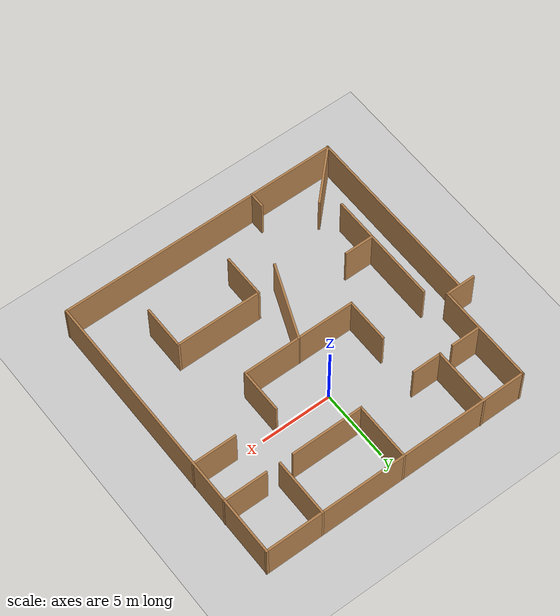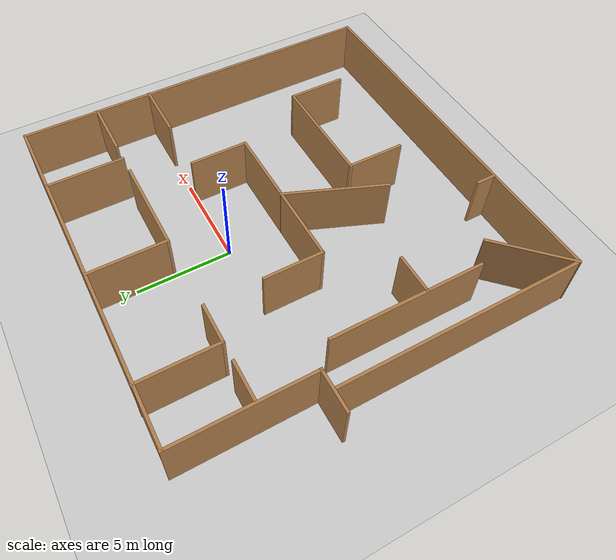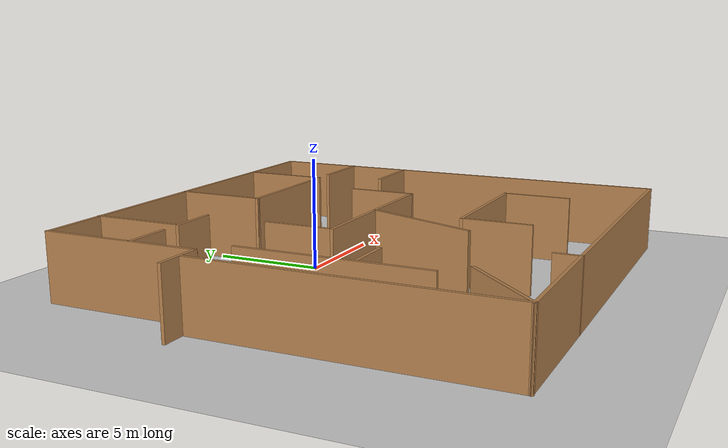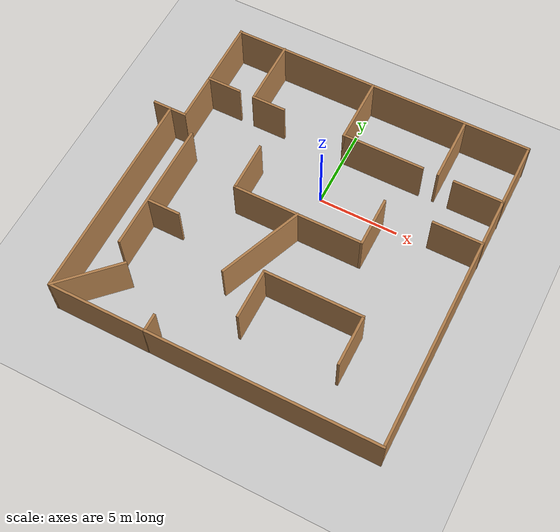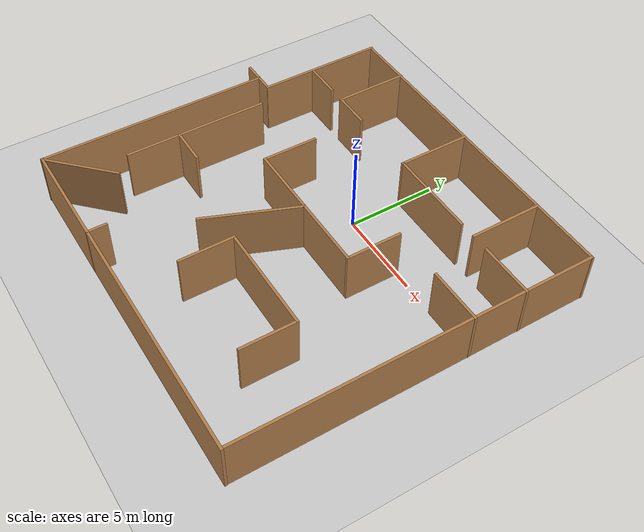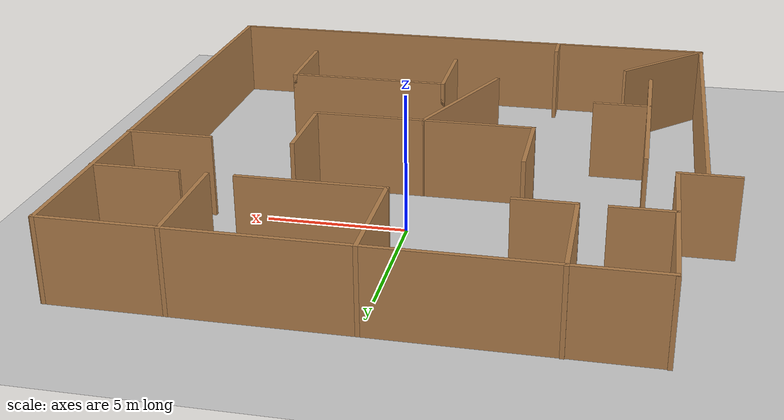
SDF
<sdf version="1.7">
 <world name="default">
  <model name="ground_plane">
   <static>1</static>
   <link name="link">
    <collision name="collision">
     <geometry><plane><normal>0 0 1</normal><size>100 100</size></plane></geometry>
     <surface>
      <contact><collide_bitmask>65535</collide_bitmask></contact>
      <friction><ode><mu>100</mu><mu2>50</mu2></ode></friction>
     </surface>
    </collision>
    <visual name="visual">
     <cast_shadows>0</cast_shadows>
     <geometry><plane><normal>0 0 1</normal><size>100 100</size></plane></geometry>
     <material>
      <script><uri>file://media/materials/scripts/gazebo.material</uri><name>Gazebo/Grey</name></script>
     </material>
    </visual>
   </link>
  </model>
  <model name="exploration_worlds1">
   <link name="Wall_1">
    <pose>-9.98447 -3.49997 0 0 -0 1.5708</pose>
    <visual name="Wall_1_Visual">
     <pose>0 0 1.5 0 -0 0</pose>
     <geometry><box><size>13.15 0.15 3</size></box></geometry>
     <material>
      <script><uri>file://media/materials/scripts/gazebo.material</uri><name>Gazebo/Wood</name></script>
      <ambient>1 1 1 1</ambient>
      <shader type="pixel"/>
     </material>
     <meta><layer>0</layer></meta>
    </visual>
    <collision name="Wall_1_Collision">
     <pose>0 0 1.5 0 -0 0</pose>
     <geometry><box><size>13.15 0.15 3</size></box></geometry>
     <surface>
      <friction>
       <ode><mu>1</mu><mu2>1</mu2><fdir1>0 0 0</fdir1><slip1>0</slip1><slip2>0</slip2></ode>
       <torsional>
        <coefficient>1</coefficient>
        <patch_radius>0</patch_radius>
        <surface_radius>0</surface_radius>
        <use_patch_radius>1</use_patch_radius>
        <ode><slip>0</slip></ode>
       </torsional>
      </friction>
      <bounce><restitution_coefficient>0</restitution_coefficient><threshold>1e+06</threshold></bounce>
      <contact>
       <collide_without_contact>0</collide_without_contact>
       <collide_without_contact_bitmask>1</collide_without_contact_bitmask>
       <collide_bitmask>1</collide_bitmask>
       <ode>
        <soft_cfm>0</soft_cfm>
        <soft_erp>0.2</soft_erp>
        <kp>1e+13</kp>
        <kd>1</kd>
        <max_vel>0.01</max_vel>
        <min_depth>0</min_depth>
       </ode>
       <bullet>
        <split_impulse>1</split_impulse>
        <split_impulse_penetration_threshold>-0.01</split_impulse_penetration_threshold>
        <soft_cfm>0</soft_cfm>
        <soft_erp>0.2</soft_erp>
        <kp>1e+13</kp>
        <kd>1</kd>
       </bullet>
      </contact>
     </surface>
    </collision>
   </link>
   <link name="Wall_10">
    <pose>6.00253 8.01353 0 0 -0 1.5708</pose>
    <visual name="Wall_10_Visual">
     <pose>0 0 1.5 0 -0 0</pose>
     <geometry><box><size>4.123 0.15 3</size></box></geometry>
     <material>
      <script><uri>file://media/materials/scripts/gazebo.material</uri><name>Gazebo/Wood</name></script>
      <ambient>1 1 1 1</ambient>
      <shader type="pixel"/>
     </material>
     <meta><layer>0</layer></meta>
    </visual>
    <collision name="Wall_10_Collision">
     <pose>0 0 1.5 0 -0 0</pose>
     <geometry><box><size>4.123 0.15 3</size></box></geometry>
     <surface>
      <friction>
       <ode><mu>1</mu><mu2>1</mu2><fdir1>0 0 0</fdir1><slip1>0</slip1><slip2>0</slip2></ode>
       <torsional>
        <coefficient>1</coefficient>
        <patch_radius>0</patch_radius>
        <surface_radius>0</surface_radius>
        <use_patch_radius>1</use_patch_radius>
        <ode><slip>0</slip></ode>
       </torsional>
      </friction>
      <bounce><restitution_coefficient>0</restitution_coefficient><threshold>1e+06</threshold></bounce>
      <contact>
       <collide_without_contact>0</collide_without_contact>
       <collide_without_contact_bitmask>1</collide_without_contact_bitmask>
       <collide_bitmask>1</collide_bitmask>
       <ode>
        <soft_cfm>0</soft_cfm>
        <soft_erp>0.2</soft_erp>
        <kp>1e+13</kp>
        <kd>1</kd>
        <max_vel>0.01</max_vel>
        <min_depth>0</min_depth>
       </ode>
       <bullet>
        <split_impulse>1</split_impulse>
        <split_impulse_penetration_threshold>-0.01</split_impulse_penetration_threshold>
        <soft_cfm>0</soft_cfm>
        <soft_erp>0.2</soft_erp>
        <kp>1e+13</kp>
        <kd>1</kd>
       </bullet>
      </contact>
     </surface>
    </collision>
   </link>
   <link name="Wall_12">
    <pose>8.51553 6.00003 0 0 -0 0</pose>
    <visual name="Wall_12_Visual">
     <pose>0 0 1.5 0 -0 0</pose>
     <geometry><box><size>3.15 0.15 3</size></box></geometry>
     <material>
      <script><uri>file://media/materials/scripts/gazebo.material</uri><name>Gazebo/Wood</name></script>
      <ambient>1 1 1 1</ambient>
      <shader type="pixel"/>
     </material>
     <meta><layer>0</layer></meta>
    </visual>
    <collision name="Wall_12_Collision">
     <pose>0 0 1.5 0 -0 0</pose>
     <geometry><box><size>3.15 0.15 3</size></box></geometry>
     <surface>
      <friction>
       <ode><mu>1</mu><mu2>1</mu2><fdir1>0 0 0</fdir1><slip1>0</slip1><slip2>0</slip2></ode>
       <torsional>
        <coefficient>1</coefficient>
        <patch_radius>0</patch_radius>
        <surface_radius>0</surface_radius>
        <use_patch_radius>1</use_patch_radius>
        <ode><slip>0</slip></ode>
       </torsional>
      </friction>
      <bounce><restitution_coefficient>0</restitution_coefficient><threshold>1e+06</threshold></bounce>
      <contact>
       <collide_without_contact>0</collide_without_contact>
       <collide_without_contact_bitmask>1</collide_without_contact_bitmask>
       <collide_bitmask>1</collide_bitmask>
       <ode>
        <soft_cfm>0</soft_cfm>
        <soft_erp>0.2</soft_erp>
        <kp>1e+13</kp>
        <kd>1</kd>
        <max_vel>0.01</max_vel>
        <min_depth>0</min_depth>
       </ode>
       <bullet>
        <split_impulse>1</split_impulse>
        <split_impulse_penetration_threshold>-0.01</split_impulse_penetration_threshold>
        <soft_cfm>0</soft_cfm>
        <soft_erp>0.2</soft_erp>
        <kp>1e+13</kp>
        <kd>1</kd>
       </bullet>
      </contact>
     </surface>
    </collision>
   </link>
   <link name="Wall_14">
    <pose>2.51553 6.00003 0 0 -0 0</pose>
    <visual name="Wall_14_Visual">
     <pose>0 0 1.5 0 -0 0</pose>
     <geometry><box><size>5.15 0.15 3</size></box></geometry>
     <material>
      <script><uri>file://media/materials/scripts/gazebo.material</uri><name>Gazebo/Wood</name></script>
      <ambient>1 1 1 1</ambient>
      <shader type="pixel"/>
     </material>
     <meta><layer>0</layer></meta>
    </visual>
    <collision name="Wall_14_Collision">
     <pose>0 0 1.5 0 -0 0</pose>
     <geometry><box><size>5.15 0.15 3</size></box></geometry>
     <surface>
      <friction>
       <ode><mu>1</mu><mu2>1</mu2><fdir1>0 0 0</fdir1><slip1>0</slip1><slip2>0</slip2></ode>
       <torsional>
        <coefficient>1</coefficient>
        <patch_radius>0</patch_radius>
        <surface_radius>0</surface_radius>
        <use_patch_radius>1</use_patch_radius>
        <ode><slip>0</slip></ode>
       </torsional>
      </friction>
      <bounce><restitution_coefficient>0</restitution_coefficient><threshold>1e+06</threshold></bounce>
      <contact>
       <collide_without_contact>0</collide_without_contact>
       <collide_without_contact_bitmask>1</collide_without_contact_bitmask>
       <collide_bitmask>1</collide_bitmask>
       <ode>
        <soft_cfm>0</soft_cfm>
        <soft_erp>0.2</soft_erp>
        <kp>1e+13</kp>
        <kd>1</kd>
        <max_vel>0.01</max_vel>
        <min_depth>0</min_depth>
       </ode>
       <bullet>
        <split_impulse>1</split_impulse>
        <split_impulse_penetration_threshold>-0.01</split_impulse_penetration_threshold>
        <soft_cfm>0</soft_cfm>
        <soft_erp>0.2</soft_erp>
        <kp>1e+13</kp>
        <kd>1</kd>
       </bullet>
      </contact>
     </surface>
    </collision>
   </link>
   <link name="Wall_16">
    <pose>0.015533 8.00003 0 0 -0 1.5708</pose>
    <visual name="Wall_16_Visual">
     <pose>0 0 1.5 0 -0 0</pose>
     <geometry><box><size>4.15 0.15 3</size></box></geometry>
     <material>
      <script><uri>file://media/materials/scripts/gazebo.material</uri><name>Gazebo/Wood</name></script>
      <ambient>1 1 1 1</ambient>
      <shader type="pixel"/>
     </material>
     <meta><layer>0</layer></meta>
    </visual>
    <collision name="Wall_16_Collision">
     <pose>0 0 1.5 0 -0 0</pose>
     <geometry><box><size>4.15 0.15 3</size></box></geometry>
     <surface>
      <friction>
       <ode><mu>1</mu><mu2>1</mu2><fdir1>0 0 0</fdir1><slip1>0</slip1><slip2>0</slip2></ode>
       <torsional>
        <coefficient>1</coefficient>
        <patch_radius>0</patch_radius>
        <surface_radius>0</surface_radius>
        <use_patch_radius>1</use_patch_radius>
        <ode><slip>0</slip></ode>
       </torsional>
      </friction>
      <bounce><restitution_coefficient>0</restitution_coefficient><threshold>1e+06</threshold></bounce>
      <contact>
       <collide_without_contact>0</collide_without_contact>
       <collide_without_contact_bitmask>1</collide_without_contact_bitmask>
       <collide_bitmask>1</collide_bitmask>
       <ode>
        <soft_cfm>0</soft_cfm>
        <soft_erp>0.2</soft_erp>
        <kp>1e+13</kp>
        <kd>1</kd>
        <max_vel>0.01</max_vel>
        <min_depth>0</min_depth>
       </ode>
       <bullet>
        <split_impulse>1</split_impulse>
        <split_impulse_penetration_threshold>-0.01</split_impulse_penetration_threshold>
        <soft_cfm>0</soft_cfm>
        <soft_erp>0.2</soft_erp>
        <kp>1e+13</kp>
        <kd>1</kd>
       </bullet>
      </contact>
     </surface>
    </collision>
   </link>
   <link name="Wall_18">
    <pose>-4.98447 6.00003 0 0 -0 3.14159</pose>
    <visual name="Wall_18_Visual">
     <pose>0 0 1.5 0 -0 0</pose>
     <geometry><box><size>2.15 0.15 3</size></box></geometry>
     <material>
      <script><uri>file://media/materials/scripts/gazebo.material</uri><name>Gazebo/Wood</name></script>
      <ambient>1 1 1 1</ambient>
      <shader type="pixel"/>
     </material>
     <meta><layer>0</layer></meta>
    </visual>
    <collision name="Wall_18_Collision">
     <pose>0 0 1.5 0 -0 0</pose>
     <geometry><box><size>2.15 0.15 3</size></box></geometry>
     <surface>
      <friction>
       <ode><mu>1</mu><mu2>1</mu2><fdir1>0 0 0</fdir1><slip1>0</slip1><slip2>0</slip2></ode>
       <torsional>
        <coefficient>1</coefficient>
        <patch_radius>0</patch_radius>
        <surface_radius>0</surface_radius>
        <use_patch_radius>1</use_patch_radius>
        <ode><slip>0</slip></ode>
       </torsional>
      </friction>
      <bounce><restitution_coefficient>0</restitution_coefficient><threshold>1e+06</threshold></bounce>
      <contact>
       <collide_without_contact>0</collide_without_contact>
       <collide_without_contact_bitmask>1</collide_without_contact_bitmask>
       <collide_bitmask>1</collide_bitmask>
       <ode>
        <soft_cfm>0</soft_cfm>
        <soft_erp>0.2</soft_erp>
        <kp>1e+13</kp>
        <kd>1</kd>
        <max_vel>0.01</max_vel>
        <min_depth>0</min_depth>
       </ode>
       <bullet>
        <split_impulse>1</split_impulse>
        <split_impulse_penetration_threshold>-0.01</split_impulse_penetration_threshold>
        <soft_cfm>0</soft_cfm>
        <soft_erp>0.2</soft_erp>
        <kp>1e+13</kp>
        <kd>1</kd>
       </bullet>
      </contact>
     </surface>
    </collision>
   </link>
   <link name="Wall_20">
    <pose>-5.98447 8.03103 0 0 -0 1.5708</pose>
    <visual name="Wall_20_Visual">
     <pose>0 0 1.5 0 -0 0</pose>
     <geometry><box><size>4.15 0.15 3</size></box></geometry>
     <material>
      <script><uri>file://media/materials/scripts/gazebo.material</uri><name>Gazebo/Wood</name></script>
      <ambient>1 1 1 1</ambient>
      <shader type="pixel"/>
     </material>
     <meta><layer>0</layer></meta>
    </visual>
    <collision name="Wall_20_Collision">
     <pose>0 0 1.5 0 -0 0</pose>
     <geometry><box><size>4.15 0.15 3</size></box></geometry>
     <surface>
      <friction>
       <ode><mu>1</mu><mu2>1</mu2><fdir1>0 0 0</fdir1><slip1>0</slip1><slip2>0</slip2></ode>
       <torsional>
        <coefficient>1</coefficient>
        <patch_radius>0</patch_radius>
        <surface_radius>0</surface_radius>
        <use_patch_radius>1</use_patch_radius>
        <ode><slip>0</slip></ode>
       </torsional>
      </friction>
      <bounce><restitution_coefficient>0</restitution_coefficient><threshold>1e+06</threshold></bounce>
      <contact>
       <collide_without_contact>0</collide_without_contact>
       <collide_without_contact_bitmask>1</collide_without_contact_bitmask>
       <collide_bitmask>1</collide_bitmask>
       <ode>
        <soft_cfm>0</soft_cfm>
        <soft_erp>0.2</soft_erp>
        <kp>1e+13</kp>
        <kd>1</kd>
        <max_vel>0.01</max_vel>
        <min_depth>0</min_depth>
       </ode>
       <bullet>
        <split_impulse>1</split_impulse>
        <split_impulse_penetration_threshold>-0.01</split_impulse_penetration_threshold>
        <soft_cfm>0</soft_cfm>
        <soft_erp>0.2</soft_erp>
        <kp>1e+13</kp>
        <kd>1</kd>
       </bullet>
      </contact>
     </surface>
    </collision>
   </link>
   <link name="Wall_22">
    <pose>-9.01547 6.53103 0 0 0 -1.5708</pose>
    <visual name="Wall_22_Visual">
     <pose>0 0 1.5 0 -0 0</pose>
     <geometry><box><size>7.15 0.15 3</size></box></geometry>
     <material>
      <script><uri>file://media/materials/scripts/gazebo.material</uri><name>Gazebo/Wood</name></script>
      <ambient>1 1 1 1</ambient>
      <shader type="pixel"/>
     </material>
     <meta><layer>0</layer></meta>
    </visual>
    <collision name="Wall_22_Collision">
     <pose>0 0 1.5 0 -0 0</pose>
     <geometry><box><size>7.15 0.15 3</size></box></geometry>
     <surface>
      <friction>
       <ode><mu>1</mu><mu2>1</mu2><fdir1>0 0 0</fdir1><slip1>0</slip1><slip2>0</slip2></ode>
       <torsional>
        <coefficient>1</coefficient>
        <patch_radius>0</patch_radius>
        <surface_radius>0</surface_radius>
        <use_patch_radius>1</use_patch_radius>
        <ode><slip>0</slip></ode>
       </torsional>
      </friction>
      <bounce><restitution_coefficient>0</restitution_coefficient><threshold>1e+06</threshold></bounce>
      <contact>
       <collide_without_contact>0</collide_without_contact>
       <collide_without_contact_bitmask>1</collide_without_contact_bitmask>
       <collide_bitmask>1</collide_bitmask>
       <ode>
        <soft_cfm>0</soft_cfm>
        <soft_erp>0.2</soft_erp>
        <kp>1e+13</kp>
        <kd>1</kd>
        <max_vel>0.01</max_vel>
        <min_depth>0</min_depth>
       </ode>
       <bullet>
        <split_impulse>1</split_impulse>
        <split_impulse_penetration_threshold>-0.01</split_impulse_penetration_threshold>
        <soft_cfm>0</soft_cfm>
        <soft_erp>0.2</soft_erp>
        <kp>1e+13</kp>
        <kd>1</kd>
       </bullet>
      </contact>
     </surface>
    </collision>
   </link>
   <link name="Wall_24">
    <pose>0.515533 10 0 0 -0 0</pose>
    <visual name="Wall_24_Visual">
     <pose>0 0 1.5 0 -0 0</pose>
     <geometry><box><size>19.15 0.15 3</size></box></geometry>
     <material>
      <script><uri>file://media/materials/scripts/gazebo.material</uri><name>Gazebo/Wood</name></script>
      <ambient>1 1 1 1</ambient>
      <shader type="pixel"/>
     </material>
     <meta><layer>0</layer></meta>
    </visual>
    <collision name="Wall_24_Collision">
     <pose>0 0 1.5 0 -0 0</pose>
     <geometry><box><size>19.15 0.15 3</size></box></geometry>
     <surface>
      <friction>
       <ode><mu>1</mu><mu2>1</mu2><fdir1>0 0 0</fdir1><slip1>0</slip1><slip2>0</slip2></ode>
       <torsional>
        <coefficient>1</coefficient>
        <patch_radius>0</patch_radius>
        <surface_radius>0</surface_radius>
        <use_patch_radius>1</use_patch_radius>
        <ode><slip>0</slip></ode>
       </torsional>
      </friction>
      <bounce><restitution_coefficient>0</restitution_coefficient><threshold>1e+06</threshold></bounce>
      <contact>
       <collide_without_contact>0</collide_without_contact>
       <collide_without_contact_bitmask>1</collide_without_contact_bitmask>
       <collide_bitmask>1</collide_bitmask>
       <ode>
        <soft_cfm>0</soft_cfm>
        <soft_erp>0.2</soft_erp>
        <kp>1e+13</kp>
        <kd>1</kd>
        <max_vel>0.01</max_vel>
        <min_depth>0</min_depth>
       </ode>
       <bullet>
        <split_impulse>1</split_impulse>
        <split_impulse_penetration_threshold>-0.01</split_impulse_penetration_threshold>
        <soft_cfm>0</soft_cfm>
        <soft_erp>0.2</soft_erp>
        <kp>1e+13</kp>
        <kd>1</kd>
       </bullet>
      </contact>
     </surface>
    </collision>
   </link>
   <link name="Wall_26">
    <pose>0.015533 3.3e-05 0 0 -0 0</pose>
    <visual name="Wall_26_Visual">
     <pose>0 0 1.5 0 -0 0</pose>
     <geometry><box><size>8.15 0.15 3</size></box></geometry>
     <material>
      <script><uri>file://media/materials/scripts/gazebo.material</uri><name>Gazebo/Wood</name></script>
      <ambient>1 1 1 1</ambient>
      <shader type="pixel"/>
     </material>
     <meta><layer>0</layer></meta>
    </visual>
    <collision name="Wall_26_Collision">
     <pose>0 0 1.5 0 -0 0</pose>
     <geometry><box><size>8.15 0.15 3</size></box></geometry>
     <surface>
      <friction>
       <ode><mu>1</mu><mu2>1</mu2><fdir1>0 0 0</fdir1><slip1>0</slip1><slip2>0</slip2></ode>
       <torsional>
        <coefficient>1</coefficient>
        <patch_radius>0</patch_radius>
        <surface_radius>0</surface_radius>
        <use_patch_radius>1</use_patch_radius>
        <ode><slip>0</slip></ode>
       </torsional>
      </friction>
      <bounce><restitution_coefficient>0</restitution_coefficient><threshold>1e+06</threshold></bounce>
      <contact>
       <collide_without_contact>0</collide_without_contact>
       <collide_without_contact_bitmask>1</collide_without_contact_bitmask>
       <collide_bitmask>1</collide_bitmask>
       <ode>
        <soft_cfm>0</soft_cfm>
        <soft_erp>0.2</soft_erp>
        <kp>1e+13</kp>
        <kd>1</kd>
        <max_vel>0.01</max_vel>
        <min_depth>0</min_depth>
       </ode>
       <bullet>
        <split_impulse>1</split_impulse>
        <split_impulse_penetration_threshold>-0.01</split_impulse_penetration_threshold>
        <soft_cfm>0</soft_cfm>
        <soft_erp>0.2</soft_erp>
        <kp>1e+13</kp>
        <kd>1</kd>
       </bullet>
      </contact>
     </surface>
    </collision>
   </link>
   <link name="Wall_28">
    <pose>-3.98447 1.53103 0 0 -0 1.5708</pose>
    <visual name="Wall_28_Visual">
     <pose>0 0 1.5 0 -0 0</pose>
     <geometry><box><size>3.15 0.15 3</size></box></geometry>
     <material>
      <script><uri>file://media/materials/scripts/gazebo.material</uri><name>Gazebo/Wood</name></script>
      <ambient>1 1 1 1</ambient>
      <shader type="pixel"/>
     </material>
     <meta><layer>0</layer></meta>
    </visual>
    <collision name="Wall_28_Collision">
     <pose>0 0 1.5 0 -0 0</pose>
     <geometry><box><size>3.15 0.15 3</size></box></geometry>
     <surface>
      <friction>
       <ode><mu>1</mu><mu2>1</mu2><fdir1>0 0 0</fdir1><slip1>0</slip1><slip2>0</slip2></ode>
       <torsional>
        <coefficient>1</coefficient>
        <patch_radius>0</patch_radius>
        <surface_radius>0</surface_radius>
        <use_patch_radius>1</use_patch_radius>
        <ode><slip>0</slip></ode>
       </torsional>
      </friction>
      <bounce><restitution_coefficient>0</restitution_coefficient><threshold>1e+06</threshold></bounce>
      <contact>
       <collide_without_contact>0</collide_without_contact>
       <collide_without_contact_bitmask>1</collide_without_contact_bitmask>
       <collide_bitmask>1</collide_bitmask>
       <ode>
        <soft_cfm>0</soft_cfm>
        <soft_erp>0.2</soft_erp>
        <kp>1e+13</kp>
        <kd>1</kd>
        <max_vel>0.01</max_vel>
        <min_depth>0</min_depth>
       </ode>
       <bullet>
        <split_impulse>1</split_impulse>
        <split_impulse_penetration_threshold>-0.01</split_impulse_penetration_threshold>
        <soft_cfm>0</soft_cfm>
        <soft_erp>0.2</soft_erp>
        <kp>1e+13</kp>
        <kd>1</kd>
       </bullet>
      </contact>
     </surface>
    </collision>
   </link>
   <link name="Wall_30">
    <pose>-7.98447 6.00003 0 0 -0 3.14159</pose>
    <visual name="Wall_30_Visual">
     <pose>0 0 1.5 0 -0 0</pose>
     <geometry><box><size>2.15 0.15 3</size></box></geometry>
     <material>
      <script><uri>file://media/materials/scripts/gazebo.material</uri><name>Gazebo/Wood</name></script>
      <ambient>1 1 1 1</ambient>
      <shader type="pixel"/>
     </material>
     <meta><layer>0</layer></meta>
    </visual>
    <collision name="Wall_30_Collision">
     <pose>0 0 1.5 0 -0 0</pose>
     <geometry><box><size>2.15 0.15 3</size></box></geometry>
     <surface>
      <friction>
       <ode><mu>1</mu><mu2>1</mu2><fdir1>0 0 0</fdir1><slip1>0</slip1><slip2>0</slip2></ode>
       <torsional>
        <coefficient>1</coefficient>
        <patch_radius>0</patch_radius>
        <surface_radius>0</surface_radius>
        <use_patch_radius>1</use_patch_radius>
        <ode><slip>0</slip></ode>
       </torsional>
      </friction>
      <bounce><restitution_coefficient>0</restitution_coefficient><threshold>1e+06</threshold></bounce>
      <contact>
       <collide_without_contact>0</collide_without_contact>
       <collide_without_contact_bitmask>1</collide_without_contact_bitmask>
       <collide_bitmask>1</collide_bitmask>
       <ode>
        <soft_cfm>0</soft_cfm>
        <soft_erp>0.2</soft_erp>
        <kp>1e+13</kp>
        <kd>1</kd>
        <max_vel>0.01</max_vel>
        <min_depth>0</min_depth>
       </ode>
       <bullet>
        <split_impulse>1</split_impulse>
        <split_impulse_penetration_threshold>-0.01</split_impulse_penetration_threshold>
        <soft_cfm>0</soft_cfm>
        <soft_erp>0.2</soft_erp>
        <kp>1e+13</kp>
        <kd>1</kd>
       </bullet>
      </contact>
     </surface>
    </collision>
   </link>
   <link name="Wall_30_clone">
    <pose>-10.0342 3.0218 0 0 -0 3.14159</pose>
    <visual name="Wall_30_Visual">
     <pose>0 0 1.5 0 -0 0</pose>
     <geometry><box><size>2.15 0.15 3</size></box></geometry>
     <material>
      <script><uri>file://media/materials/scripts/gazebo.material</uri><name>Gazebo/Wood</name></script>
      <ambient>1 1 1 1</ambient>
      <shader type="pixel"/>
     </material>
     <meta><layer>0</layer></meta>
    </visual>
    <collision name="Wall_30_Collision">
     <pose>0 0 1.5 0 -0 0</pose>
     <geometry><box><size>2.15 0.15 3</size></box></geometry>
     <surface>
      <friction>
       <ode><mu>1</mu><mu2>1</mu2><fdir1>0 0 0</fdir1><slip1>0</slip1><slip2>0</slip2></ode>
       <torsional>
        <coefficient>1</coefficient>
        <patch_radius>0</patch_radius>
        <surface_radius>0</surface_radius>
        <use_patch_radius>1</use_patch_radius>
        <ode><slip>0</slip></ode>
       </torsional>
      </friction>
      <bounce><restitution_coefficient>0</restitution_coefficient><threshold>1e+06</threshold></bounce>
      <contact>
       <collide_without_contact>0</collide_without_contact>
       <collide_without_contact_bitmask>1</collide_without_contact_bitmask>
       <collide_bitmask>1</collide_bitmask>
       <ode>
        <soft_cfm>0</soft_cfm>
        <soft_erp>0.2</soft_erp>
        <kp>1e+13</kp>
        <kd>1</kd>
        <max_vel>0.01</max_vel>
        <min_depth>0</min_depth>
       </ode>
       <bullet>
        <split_impulse>1</split_impulse>
        <split_impulse_penetration_threshold>-0.01</split_impulse_penetration_threshold>
        <soft_cfm>0</soft_cfm>
        <soft_erp>0.2</soft_erp>
        <kp>1e+13</kp>
        <kd>1</kd>
       </bullet>
      </contact>
     </surface>
    </collision>
   </link>
   <link name="Wall_32">
    <pose>4.01553 1.50003 0 0 -0 1.5708</pose>
    <visual name="Wall_32_Visual">
     <pose>0 0 1.5 0 -0 0</pose>
     <geometry><box><size>3.15 0.15 3</size></box></geometry>
     <material>
      <script><uri>file://media/materials/scripts/gazebo.material</uri><name>Gazebo/Wood</name></script>
      <ambient>1 1 1 1</ambient>
      <shader type="pixel"/>
     </material>
     <meta><layer>0</layer></meta>
    </visual>
    <collision name="Wall_32_Collision">
     <pose>0 0 1.5 0 -0 0</pose>
     <geometry><box><size>3.15 0.15 3</size></box></geometry>
     <surface>
      <friction>
       <ode><mu>1</mu><mu2>1</mu2><fdir1>0 0 0</fdir1><slip1>0</slip1><slip2>0</slip2></ode>
       <torsional>
        <coefficient>1</coefficient>
        <patch_radius>0</patch_radius>
        <surface_radius>0</surface_radius>
        <use_patch_radius>1</use_patch_radius>
        <ode><slip>0</slip></ode>
       </torsional>
      </friction>
      <bounce><restitution_coefficient>0</restitution_coefficient><threshold>1e+06</threshold></bounce>
      <contact>
       <collide_without_contact>0</collide_without_contact>
       <collide_without_contact_bitmask>1</collide_without_contact_bitmask>
       <collide_bitmask>1</collide_bitmask>
       <ode>
        <soft_cfm>0</soft_cfm>
        <soft_erp>0.2</soft_erp>
        <kp>1e+13</kp>
        <kd>1</kd>
        <max_vel>0.01</max_vel>
        <min_depth>0</min_depth>
       </ode>
       <bullet>
        <split_impulse>1</split_impulse>
        <split_impulse_penetration_threshold>-0.01</split_impulse_penetration_threshold>
        <soft_cfm>0</soft_cfm>
        <soft_erp>0.2</soft_erp>
        <kp>1e+13</kp>
        <kd>1</kd>
       </bullet>
      </contact>
     </surface>
    </collision>
   </link>
   <link name="Wall_34">
    <pose>8.51553 3.00003 0 0 -0 0</pose>
    <visual name="Wall_34_Visual">
     <pose>0 0 1.5 0 -0 0</pose>
     <geometry><box><size>3.15 0.15 3</size></box></geometry>
     <material>
      <script><uri>file://media/materials/scripts/gazebo.material</uri><name>Gazebo/Wood</name></script>
      <ambient>1 1 1 1</ambient>
      <shader type="pixel"/>
     </material>
     <meta><layer>0</layer></meta>
    </visual>
    <collision name="Wall_34_Collision">
     <pose>0 0 1.5 0 -0 0</pose>
     <geometry><box><size>3.15 0.15 3</size></box></geometry>
     <surface>
      <friction>
       <ode><mu>1</mu><mu2>1</mu2><fdir1>0 0 0</fdir1><slip1>0</slip1><slip2>0</slip2></ode>
       <torsional>
        <coefficient>1</coefficient>
        <patch_radius>0</patch_radius>
        <surface_radius>0</surface_radius>
        <use_patch_radius>1</use_patch_radius>
        <ode><slip>0</slip></ode>
       </torsional>
      </friction>
      <bounce><restitution_coefficient>0</restitution_coefficient><threshold>1e+06</threshold></bounce>
      <contact>
       <collide_without_contact>0</collide_without_contact>
       <collide_without_contact_bitmask>1</collide_without_contact_bitmask>
       <collide_bitmask>1</collide_bitmask>
       <ode>
        <soft_cfm>0</soft_cfm>
        <soft_erp>0.2</soft_erp>
        <kp>1e+13</kp>
        <kd>1</kd>
        <max_vel>0.01</max_vel>
        <min_depth>0</min_depth>
       </ode>
       <bullet>
        <split_impulse>1</split_impulse>
        <split_impulse_penetration_threshold>-0.01</split_impulse_penetration_threshold>
        <soft_cfm>0</soft_cfm>
        <soft_erp>0.2</soft_erp>
        <kp>1e+13</kp>
        <kd>1</kd>
       </bullet>
      </contact>
     </surface>
    </collision>
   </link>
   <link name="Wall_36">
    <pose>0.015533 -5.49997 0 0 0 -1.5708</pose>
    <visual name="Wall_36_Visual">
     <pose>0 0 1.5 0 -0 0</pose>
     <geometry><box><size>3.15 0.15 3</size></box></geometry>
     <material>
      <script><uri>file://media/materials/scripts/gazebo.material</uri><name>Gazebo/Wood</name></script>
      <ambient>1 1 1 1</ambient>
      <shader type="pixel"/>
     </material>
     <meta><layer>0</layer></meta>
    </visual>
    <collision name="Wall_36_Collision">
     <pose>0 0 1.5 0 -0 0</pose>
     <geometry><box><size>3.15 0.15 3</size></box></geometry>
     <surface>
      <friction>
       <ode><mu>1</mu><mu2>1</mu2><fdir1>0 0 0</fdir1><slip1>0</slip1><slip2>0</slip2></ode>
       <torsional>
        <coefficient>1</coefficient>
        <patch_radius>0</patch_radius>
        <surface_radius>0</surface_radius>
        <use_patch_radius>1</use_patch_radius>
        <ode><slip>0</slip></ode>
       </torsional>
      </friction>
      <bounce><restitution_coefficient>0</restitution_coefficient><threshold>1e+06</threshold></bounce>
      <contact>
       <collide_without_contact>0</collide_without_contact>
       <collide_without_contact_bitmask>1</collide_without_contact_bitmask>
       <collide_bitmask>1</collide_bitmask>
       <ode>
        <soft_cfm>0</soft_cfm>
        <soft_erp>0.2</soft_erp>
        <kp>1e+13</kp>
        <kd>1</kd>
        <max_vel>0.01</max_vel>
        <min_depth>0</min_depth>
       </ode>
       <bullet>
        <split_impulse>1</split_impulse>
        <split_impulse_penetration_threshold>-0.01</split_impulse_penetration_threshold>
        <soft_cfm>0</soft_cfm>
        <soft_erp>0.2</soft_erp>
        <kp>1e+13</kp>
        <kd>1</kd>
       </bullet>
      </contact>
     </surface>
    </collision>
   </link>
   <link name="Wall_38">
    <pose>3.01553 -3.99997 0 0 -0 0</pose>
    <visual name="Wall_38_Visual">
     <pose>0 0 1.5 0 -0 0</pose>
     <geometry><box><size>6.15 0.15 3</size></box></geometry>
     <material>
      <script><uri>file://media/materials/scripts/gazebo.material</uri><name>Gazebo/Wood</name></script>
      <ambient>1 1 1 1</ambient>
      <shader type="pixel"/>
     </material>
     <meta><layer>0</layer></meta>
    </visual>
    <collision name="Wall_38_Collision">
     <pose>0 0 1.5 0 -0 0</pose>
     <geometry><box><size>6.15 0.15 3</size></box></geometry>
     <surface>
      <friction>
       <ode><mu>1</mu><mu2>1</mu2><fdir1>0 0 0</fdir1><slip1>0</slip1><slip2>0</slip2></ode>
       <torsional>
        <coefficient>1</coefficient>
        <patch_radius>0</patch_radius>
        <surface_radius>0</surface_radius>
        <use_patch_radius>1</use_patch_radius>
        <ode><slip>0</slip></ode>
       </torsional>
      </friction>
      <bounce><restitution_coefficient>0</restitution_coefficient><threshold>1e+06</threshold></bounce>
      <contact>
       <collide_without_contact>0</collide_without_contact>
       <collide_without_contact_bitmask>1</collide_without_contact_bitmask>
       <collide_bitmask>1</collide_bitmask>
       <ode>
        <soft_cfm>0</soft_cfm>
        <soft_erp>0.2</soft_erp>
        <kp>1e+13</kp>
        <kd>1</kd>
        <max_vel>0.01</max_vel>
        <min_depth>0</min_depth>
       </ode>
       <bullet>
        <split_impulse>1</split_impulse>
        <split_impulse_penetration_threshold>-0.01</split_impulse_penetration_threshold>
        <soft_cfm>0</soft_cfm>
        <soft_erp>0.2</soft_erp>
        <kp>1e+13</kp>
        <kd>1</kd>
       </bullet>
      </contact>
     </surface>
    </collision>
   </link>
   <link name="Wall_40">
    <pose>6.01553 -5.49997 0 0 0 -1.5708</pose>
    <visual name="Wall_40_Visual">
     <pose>0 0 1.5 0 -0 0</pose>
     <geometry><box><size>3.15 0.15 3</size></box></geometry>
     <material>
      <script><uri>file://media/materials/scripts/gazebo.material</uri><name>Gazebo/Wood</name></script>
      <ambient>1 1 1 1</ambient>
      <shader type="pixel"/>
     </material>
     <meta><layer>0</layer></meta>
    </visual>
    <collision name="Wall_40_Collision">
     <pose>0 0 1.5 0 -0 0</pose>
     <geometry><box><size>3.15 0.15 3</size></box></geometry>
     <surface>
      <friction>
       <ode><mu>1</mu><mu2>1</mu2><fdir1>0 0 0</fdir1><slip1>0</slip1><slip2>0</slip2></ode>
       <torsional>
        <coefficient>1</coefficient>
        <patch_radius>0</patch_radius>
        <surface_radius>0</surface_radius>
        <use_patch_radius>1</use_patch_radius>
        <ode><slip>0</slip></ode>
       </torsional>
      </friction>
      <bounce><restitution_coefficient>0</restitution_coefficient><threshold>1e+06</threshold></bounce>
      <contact>
       <collide_without_contact>0</collide_without_contact>
       <collide_without_contact_bitmask>1</collide_without_contact_bitmask>
       <collide_bitmask>1</collide_bitmask>
       <ode>
        <soft_cfm>0</soft_cfm>
        <soft_erp>0.2</soft_erp>
        <kp>1e+13</kp>
        <kd>1</kd>
        <max_vel>0.01</max_vel>
        <min_depth>0</min_depth>
       </ode>
       <bullet>
        <split_impulse>1</split_impulse>
        <split_impulse_penetration_threshold>-0.01</split_impulse_penetration_threshold>
        <soft_cfm>0</soft_cfm>
        <soft_erp>0.2</soft_erp>
        <kp>1e+13</kp>
        <kd>1</kd>
       </bullet>
      </contact>
     </surface>
    </collision>
   </link>
   <link name="Wall_42">
    <pose>-8.48447 -8.49997 0 0 -0 0.785398</pose>
    <visual name="Wall_42_Visual">
     <pose>0 0 1.5 0 -0 0</pose>
     <geometry><box><size>4.39264 0.15 3</size></box></geometry>
     <material>
      <script><uri>file://media/materials/scripts/gazebo.material</uri><name>Gazebo/Wood</name></script>
      <ambient>1 1 1 1</ambient>
      <shader type="pixel"/>
     </material>
     <meta><layer>0</layer></meta>
    </visual>
    <collision name="Wall_42_Collision">
     <pose>0 0 1.5 0 -0 0</pose>
     <geometry><box><size>4.39264 0.15 3</size></box></geometry>
     <surface>
      <friction>
       <ode><mu>1</mu><mu2>1</mu2><fdir1>0 0 0</fdir1><slip1>0</slip1><slip2>0</slip2></ode>
       <torsional>
        <coefficient>1</coefficient>
        <patch_radius>0</patch_radius>
        <surface_radius>0</surface_radius>
        <use_patch_radius>1</use_patch_radius>
        <ode><slip>0</slip></ode>
       </torsional>
      </friction>
      <bounce><restitution_coefficient>0</restitution_coefficient><threshold>1e+06</threshold></bounce>
      <contact>
       <collide_without_contact>0</collide_without_contact>
       <collide_without_contact_bitmask>1</collide_without_contact_bitmask>
       <collide_bitmask>1</collide_bitmask>
       <ode>
        <soft_cfm>0</soft_cfm>
        <soft_erp>0.2</soft_erp>
        <kp>1e+13</kp>
        <kd>1</kd>
        <max_vel>0.01</max_vel>
        <min_depth>0</min_depth>
       </ode>
       <bullet>
        <split_impulse>1</split_impulse>
        <split_impulse_penetration_threshold>-0.01</split_impulse_penetration_threshold>
        <soft_cfm>0</soft_cfm>
        <soft_erp>0.2</soft_erp>
        <kp>1e+13</kp>
        <kd>1</kd>
       </bullet>
      </contact>
     </surface>
    </collision>
   </link>
   <link name="Wall_44">
    <pose>-3.98447 -9.49997 0 0 -0 1.5708</pose>
    <visual name="Wall_44_Visual">
     <pose>0 0 1.5 0 -0 0</pose>
     <geometry><box><size>1.15 0.15 3</size></box></geometry>
     <material>
      <script><uri>file://media/materials/scripts/gazebo.material</uri><name>Gazebo/Wood</name></script>
      <ambient>1 1 1 1</ambient>
      <shader type="pixel"/>
     </material>
     <meta><layer>0</layer></meta>
    </visual>
    <collision name="Wall_44_Collision">
     <pose>0 0 1.5 0 -0 0</pose>
     <geometry><box><size>1.15 0.15 3</size></box></geometry>
     <surface>
      <friction>
       <ode><mu>1</mu><mu2>1</mu2><fdir1>0 0 0</fdir1><slip1>0</slip1><slip2>0</slip2></ode>
       <torsional>
        <coefficient>1</coefficient>
        <patch_radius>0</patch_radius>
        <surface_radius>0</surface_radius>
        <use_patch_radius>1</use_patch_radius>
        <ode><slip>0</slip></ode>
       </torsional>
      </friction>
      <bounce><restitution_coefficient>0</restitution_coefficient><threshold>1e+06</threshold></bounce>
      <contact>
       <collide_without_contact>0</collide_without_contact>
       <collide_without_contact_bitmask>1</collide_without_contact_bitmask>
       <collide_bitmask>1</collide_bitmask>
       <ode>
        <soft_cfm>0</soft_cfm>
        <soft_erp>0.2</soft_erp>
        <kp>1e+13</kp>
        <kd>1</kd>
        <max_vel>0.01</max_vel>
        <min_depth>0</min_depth>
       </ode>
       <bullet>
        <split_impulse>1</split_impulse>
        <split_impulse_penetration_threshold>-0.01</split_impulse_penetration_threshold>
        <soft_cfm>0</soft_cfm>
        <soft_erp>0.2</soft_erp>
        <kp>1e+13</kp>
        <kd>1</kd>
       </bullet>
      </contact>
     </surface>
    </collision>
   </link>
   <link name="Wall_46">
    <pose>-7.98447 -1.99997 0 0 0 -1.5708</pose>
    <visual name="Wall_46_Visual">
     <pose>0 0 1.5 0 -0 0</pose>
     <geometry><box><size>8.15 0.15 3</size></box></geometry>
     <material>
      <script><uri>file://media/materials/scripts/gazebo.material</uri><name>Gazebo/Wood</name></script>
      <ambient>1 1 1 1</ambient>
      <shader type="pixel"/>
     </material>
     <meta><layer>0</layer></meta>
    </visual>
    <collision name="Wall_46_Collision">
     <pose>0 0 1.5 0 -0 0</pose>
     <geometry><box><size>8.15 0.15 3</size></box></geometry>
     <surface>
      <friction>
       <ode><mu>1</mu><mu2>1</mu2><fdir1>0 0 0</fdir1><slip1>0</slip1><slip2>0</slip2></ode>
       <torsional>
        <coefficient>1</coefficient>
        <patch_radius>0</patch_radius>
        <surface_radius>0</surface_radius>
        <use_patch_radius>1</use_patch_radius>
        <ode><slip>0</slip></ode>
       </torsional>
      </friction>
      <bounce><restitution_coefficient>0</restitution_coefficient><threshold>1e+06</threshold></bounce>
      <contact>
       <collide_without_contact>0</collide_without_contact>
       <collide_without_contact_bitmask>1</collide_without_contact_bitmask>
       <collide_bitmask>1</collide_bitmask>
       <ode>
        <soft_cfm>0</soft_cfm>
        <soft_erp>0.2</soft_erp>
        <kp>1e+13</kp>
        <kd>1</kd>
        <max_vel>0.01</max_vel>
        <min_depth>0</min_depth>
       </ode>
       <bullet>
        <split_impulse>1</split_impulse>
        <split_impulse_penetration_threshold>-0.01</split_impulse_penetration_threshold>
        <soft_cfm>0</soft_cfm>
        <soft_erp>0.2</soft_erp>
        <kp>1e+13</kp>
        <kd>1</kd>
       </bullet>
      </contact>
     </surface>
    </collision>
   </link>
   <link name="Wall_48">
    <pose>-0.984467 -2.49997 0 0 0 -1.9513</pose>
    <visual name="Wall_48_Visual">
     <pose>0 0 1.5 0 -0 0</pose>
     <geometry><box><size>5.53517 0.15 3</size></box></geometry>
     <material>
      <script><uri>file://media/materials/scripts/gazebo.material</uri><name>Gazebo/Wood</name></script>
      <ambient>1 1 1 1</ambient>
      <shader type="pixel"/>
     </material>
     <meta><layer>0</layer></meta>
    </visual>
    <collision name="Wall_48_Collision">
     <pose>0 0 1.5 0 -0 0</pose>
     <geometry><box><size>5.53517 0.15 3</size></box></geometry>
     <surface>
      <friction>
       <ode><mu>1</mu><mu2>1</mu2><fdir1>0 0 0</fdir1><slip1>0</slip1><slip2>0</slip2></ode>
       <torsional>
        <coefficient>1</coefficient>
        <patch_radius>0</patch_radius>
        <surface_radius>0</surface_radius>
        <use_patch_radius>1</use_patch_radius>
        <ode><slip>0</slip></ode>
       </torsional>
      </friction>
      <bounce><restitution_coefficient>0</restitution_coefficient><threshold>1e+06</threshold></bounce>
      <contact>
       <collide_without_contact>0</collide_without_contact>
       <collide_without_contact_bitmask>1</collide_without_contact_bitmask>
       <collide_bitmask>1</collide_bitmask>
       <ode>
        <soft_cfm>0</soft_cfm>
        <soft_erp>0.2</soft_erp>
        <kp>1e+13</kp>
        <kd>1</kd>
        <max_vel>0.01</max_vel>
        <min_depth>0</min_depth>
       </ode>
       <bullet>
        <split_impulse>1</split_impulse>
        <split_impulse_penetration_threshold>-0.01</split_impulse_penetration_threshold>
        <soft_cfm>0</soft_cfm>
        <soft_erp>0.2</soft_erp>
        <kp>1e+13</kp>
        <kd>1</kd>
       </bullet>
      </contact>
     </surface>
    </collision>
   </link>
   <link name="Wall_50">
    <pose>-6.98447 -2.99997 0 0 -0 0</pose>
    <visual name="Wall_50_Visual">
     <pose>0 0 1.5 0 -0 0</pose>
     <geometry><box><size>2.15 0.15 3</size></box></geometry>
     <material>
      <script><uri>file://media/materials/scripts/gazebo.material</uri><name>Gazebo/Wood</name></script>
      <ambient>1 1 1 1</ambient>
      <shader type="pixel"/>
     </material>
     <meta><layer>0</layer></meta>
    </visual>
    <collision name="Wall_50_Collision">
     <pose>0 0 1.5 0 -0 0</pose>
     <geometry><box><size>2.15 0.15 3</size></box></geometry>
     <surface>
      <friction>
       <ode><mu>1</mu><mu2>1</mu2><fdir1>0 0 0</fdir1><slip1>0</slip1><slip2>0</slip2></ode>
       <torsional>
        <coefficient>1</coefficient>
        <patch_radius>0</patch_radius>
        <surface_radius>0</surface_radius>
        <use_patch_radius>1</use_patch_radius>
        <ode><slip>0</slip></ode>
       </torsional>
      </friction>
      <bounce><restitution_coefficient>0</restitution_coefficient><threshold>1e+06</threshold></bounce>
      <contact>
       <collide_without_contact>0</collide_without_contact>
       <collide_without_contact_bitmask>1</collide_without_contact_bitmask>
       <collide_bitmask>1</collide_bitmask>
       <ode>
        <soft_cfm>0</soft_cfm>
        <soft_erp>0.2</soft_erp>
        <kp>1e+13</kp>
        <kd>1</kd>
        <max_vel>0.01</max_vel>
        <min_depth>0</min_depth>
       </ode>
       <bullet>
        <split_impulse>1</split_impulse>
        <split_impulse_penetration_threshold>-0.01</split_impulse_penetration_threshold>
        <soft_cfm>0</soft_cfm>
        <soft_erp>0.2</soft_erp>
        <kp>1e+13</kp>
        <kd>1</kd>
       </bullet>
      </contact>
     </surface>
    </collision>
   </link>
   <link name="Wall_6">
    <pose>0.015533 -9.99997 0 0 -0 0</pose>
    <visual name="Wall_6_Visual">
     <pose>0 0 1.5 0 -0 0</pose>
     <geometry><box><size>20.15 0.15 3</size></box></geometry>
     <material>
      <script><uri>file://media/materials/scripts/gazebo.material</uri><name>Gazebo/Wood</name></script>
      <ambient>1 1 1 1</ambient>
      <shader type="pixel"/>
     </material>
     <meta><layer>0</layer></meta>
    </visual>
    <collision name="Wall_6_Collision">
     <pose>0 0 1.5 0 -0 0</pose>
     <geometry><box><size>20.15 0.15 3</size></box></geometry>
     <surface>
      <friction>
       <ode><mu>1</mu><mu2>1</mu2><fdir1>0 0 0</fdir1><slip1>0</slip1><slip2>0</slip2></ode>
       <torsional>
        <coefficient>1</coefficient>
        <patch_radius>0</patch_radius>
        <surface_radius>0</surface_radius>
        <use_patch_radius>1</use_patch_radius>
        <ode><slip>0</slip></ode>
       </torsional>
      </friction>
      <bounce><restitution_coefficient>0</restitution_coefficient><threshold>1e+06</threshold></bounce>
      <contact>
       <collide_without_contact>0</collide_without_contact>
       <collide_without_contact_bitmask>1</collide_without_contact_bitmask>
       <collide_bitmask>1</collide_bitmask>
       <ode>
        <soft_cfm>0</soft_cfm>
        <soft_erp>0.2</soft_erp>
        <kp>1e+13</kp>
        <kd>1</kd>
        <max_vel>0.01</max_vel>
        <min_depth>0</min_depth>
       </ode>
       <bullet>
        <split_impulse>1</split_impulse>
        <split_impulse_penetration_threshold>-0.01</split_impulse_penetration_threshold>
        <soft_cfm>0</soft_cfm>
        <soft_erp>0.2</soft_erp>
        <kp>1e+13</kp>
        <kd>1</kd>
       </bullet>
      </contact>
     </surface>
    </collision>
   </link>
   <link name="Wall_8">
    <pose>9.99253 3.3e-05 0 0 -0 1.5708</pose>
    <visual name="Wall_8_Visual">
     <pose>0 0 1.5 0 -0 0</pose>
     <geometry><box><size>20.15 0.15 3</size></box></geometry>
     <material>
      <script><uri>file://media/materials/scripts/gazebo.material</uri><name>Gazebo/Wood</name></script>
      <ambient>1 1 1 1</ambient>
      <shader type="pixel"/>
     </material>
     <meta><layer>0</layer></meta>
    </visual>
    <collision name="Wall_8_Collision">
     <pose>0 0 1.5 0 -0 0</pose>
     <geometry><box><size>20.15 0.15 3</size></box></geometry>
     <surface>
      <friction>
       <ode><mu>1</mu><mu2>1</mu2><fdir1>0 0 0</fdir1><slip1>0</slip1><slip2>0</slip2></ode>
       <torsional>
        <coefficient>1</coefficient>
        <patch_radius>0</patch_radius>
        <surface_radius>0</surface_radius>
        <use_patch_radius>1</use_patch_radius>
        <ode><slip>0</slip></ode>
       </torsional>
      </friction>
      <bounce><restitution_coefficient>0</restitution_coefficient><threshold>1e+06</threshold></bounce>
      <contact>
       <collide_without_contact>0</collide_without_contact>
       <collide_without_contact_bitmask>1</collide_without_contact_bitmask>
       <collide_bitmask>1</collide_bitmask>
       <ode>
        <soft_cfm>0</soft_cfm>
        <soft_erp>0.2</soft_erp>
        <kp>1e+13</kp>
        <kd>1</kd>
        <max_vel>0.01</max_vel>
        <min_depth>0</min_depth>
       </ode>
       <bullet>
        <split_impulse>1</split_impulse>
        <split_impulse_penetration_threshold>-0.01</split_impulse_penetration_threshold>
        <soft_cfm>0</soft_cfm>
        <soft_erp>0.2</soft_erp>
        <kp>1e+13</kp>
        <kd>1</kd>
       </bullet>
      </contact>
     </surface>
    </collision>
   </link>
   <static>1</static>
   <pose>-0.01553 -3.00003 0 0 -0 0</pose>
  </model>
 </world>
</sdf>
